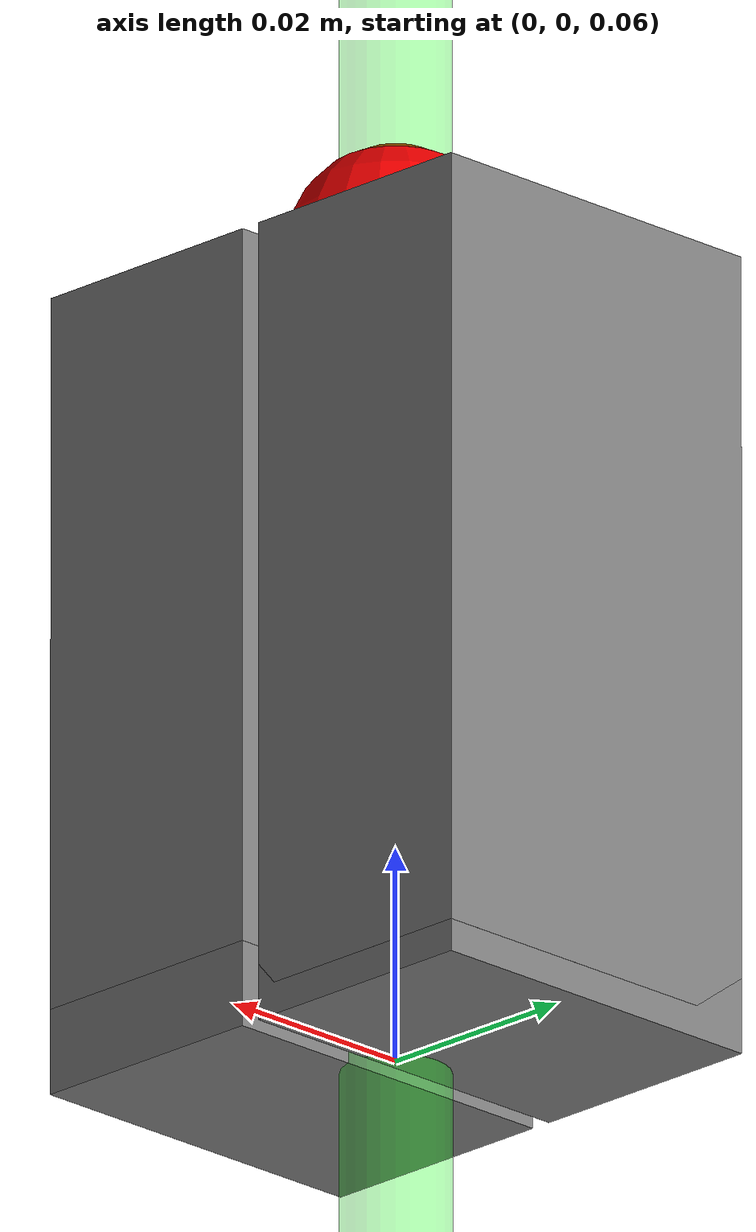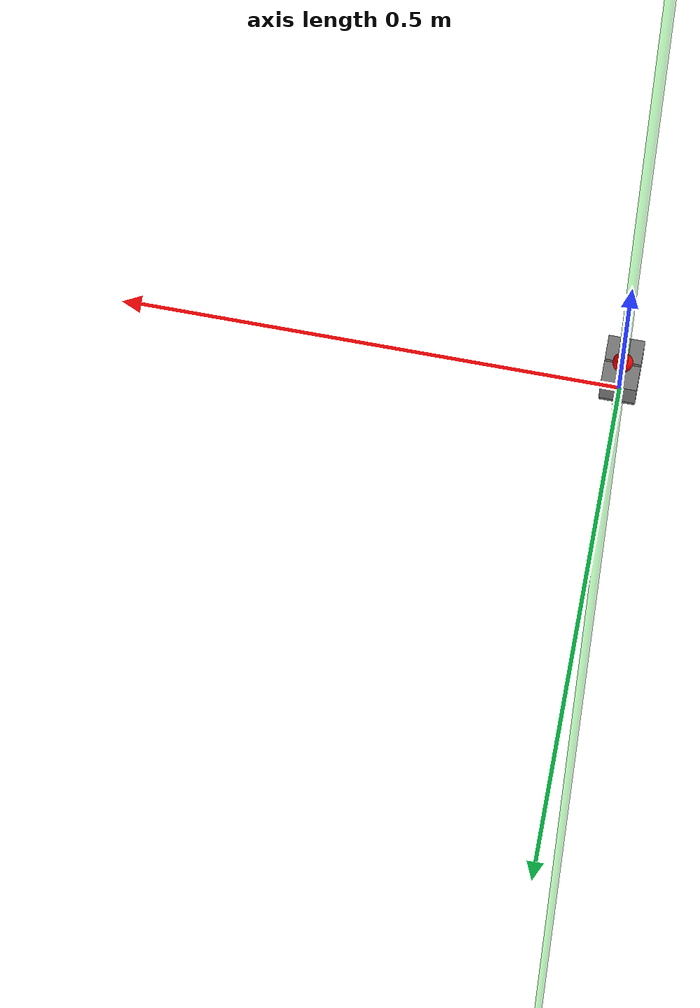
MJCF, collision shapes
<mujoco model="piper_gripper">
    <asset>
        <mesh name="piper_link7" file="../robots/piper/meshes/link7.STL" />
        <mesh name="piper_link8" file="../robots/piper/meshes/link8.STL" />
    </asset>

    <actuator>
        <position ctrllimited="true" ctrlrange="0.0 0.035" joint="left_finger_joint" kp="2000" name="left_finger" forcelimited="true" forcerange="-200 200" />
        <position ctrllimited="true" ctrlrange="-0.035 0.0" joint="right_finger_joint" kp="2000" name="right_finger" forcelimited="true" forcerange="-200 200" />
    </actuator>

    <worldbody>
        <body name="piper_gripper" pos="0 0 0">
            <site name="ft_frame" pos="0 0 0.1358" size="0.01 0.01 0.01" rgba="1 0 0 1" type="sphere" group="1" />
            <body name="eef" pos="0 0 0.0828" quat="1 0 0 0">
                <site name="grip_site" pos="0 0 0" size="0.01 0.01 0.01" rgba="1 0 0 0.5" type="sphere" group="1" />
                <site name="ee_x" pos="0.1 0 0" size="0.005 0.1" quat="0.707105 0 0.707108 0" rgba="1 0 0 0" type="cylinder" group="1" />
                <site name="ee_y" pos="0 0.1 0" size="0.005 0.1" quat="0.707105 0.707108 0 0" rgba="0 1 0 0" type="cylinder" group="1" />
                <site name="ee_z" pos="0 0 0.1" size="0.005 0.1" quat="1 0 0 0" rgba="0 0 1 0" type="cylinder" group="1" />
                <site name="grip_site_cylinder" pos="0 0 0" size="0.005 10" rgba="0 1 0 0.3" type="cylinder" group="1" />
            </body>

            <body name="left_finger" pos="0 0 0.1358" quat="0.707107 0.707107 0 0">
                <inertial pos="0.00065 -0.04919 0.00972" mass="0.025" diaginertia="0.00007371 0.00000781 0.0000747" />
                <joint name="left_finger_joint" pos="0 0 0" axis="0 0 1" type="slide" limited="true" range="0 0.035" damping="100" armature="1.0" frictionloss="2.0" />
                <geom name="left_finger_visual" type="mesh" contype="0" conaffinity="0" group="1" rgba="0.792157 0.819608 0.933333 1" mesh="piper_link7" />
                <geom name="left_finger_collision" pos="0 -0.038 0.013" size="0.018 0.036 0.012" type="box" group="0" solref="0.01 0.5" friction="4 0.1 0.001" condim="4" conaffinity="1" contype="0" />
                <geom name="left_fingerpad_collision" pos="0 -0.073 0.013" size="0.018 0.004 0.012" type="box" group="0" solref="0.005 1" friction="8 1 0.01" condim="6" conaffinity="1" contype="1" />
            </body>

            <body name="right_finger" pos="0 0 0.1358" quat="0 0 -0.707107 -0.707107">
                <inertial pos="0.00065 -0.04919 0.00972" mass="0.025" diaginertia="0.00007371 0.00000781 0.0000747" />
                <joint name="right_finger_joint" pos="0 0 0" axis="0 0 -1" type="slide" limited="true" range="-0.035 0" damping="100" armature="1.0" frictionloss="2.0" />
                <geom name="right_finger_visual" type="mesh" contype="0" conaffinity="0" group="1" rgba="0.792157 0.819608 0.933333 1" mesh="piper_link8" />
                <geom name="right_finger_collision" pos="0 -0.038 0.013" size="0.018 0.036 0.012" type="box" group="0" solref="0.01 0.5" friction="4 0.1 0.001" condim="4" conaffinity="1" contype="0" />
                <geom name="right_fingerpad_collision" pos="0 -0.073 0.013" size="0.018 0.004 0.012" type="box" group="0" solref="0.005 1" friction="8 1 0.01" condim="6" conaffinity="1" contype="1" />
            </body>
        </body>
    </worldbody>

    <sensor>
        <force name="force_ee" site="ft_frame" />
        <torque name="torque_ee" site="ft_frame" />
    </sensor>
</mujoco>
